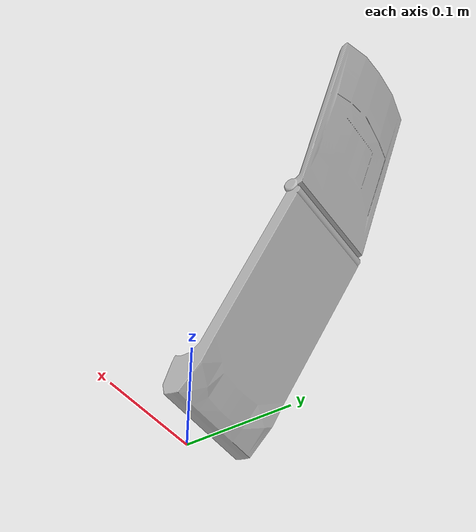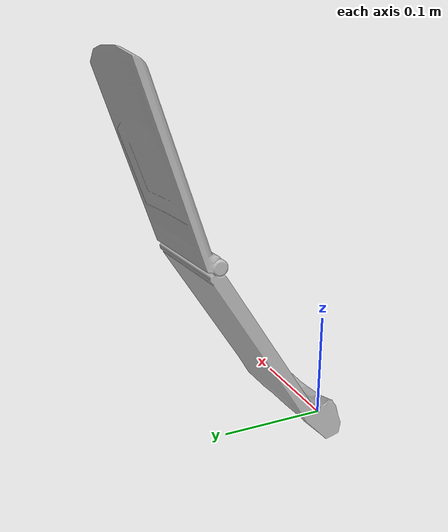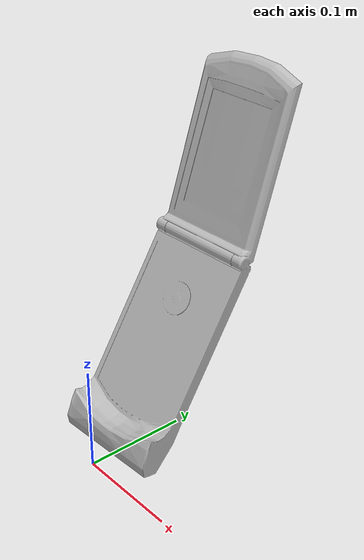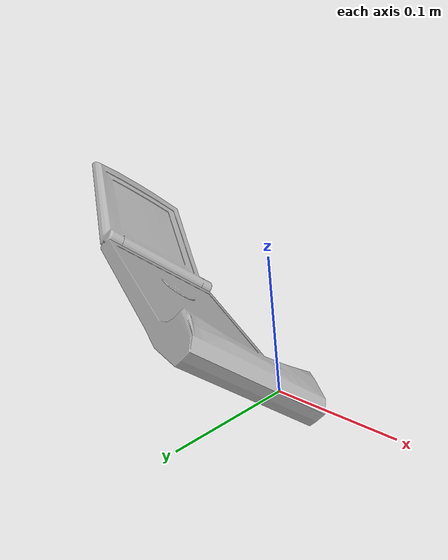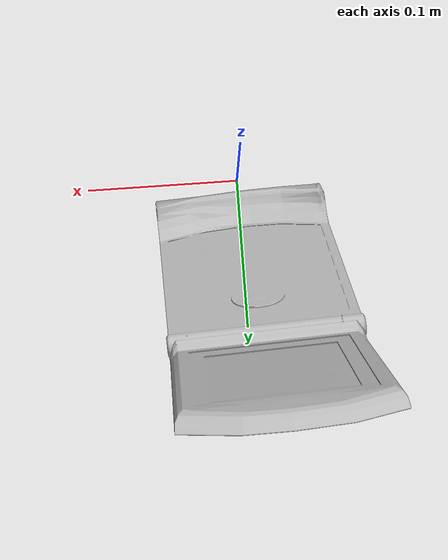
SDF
<?xml version='1.0'?>
<sdf version='1.6'>
  <model name='phone'>
    <link name='link_2'>
      <visual name='visual'>
        <pose frame=''>0 0 0 0 0 0</pose>
        <geometry>
          <mesh>
            <uri>model://phone/meshes/phone.dae</uri>
            <scale>1.0 1.0 1.0</scale>
          </mesh>
        </geometry>
        <cast_shadows>0</cast_shadows>
        <transparency>0</transparency>
      </visual>

    </link>

    <static>1</static>
    <allow_auto_disable>1</allow_auto_disable>
  </model>
</sdf>
